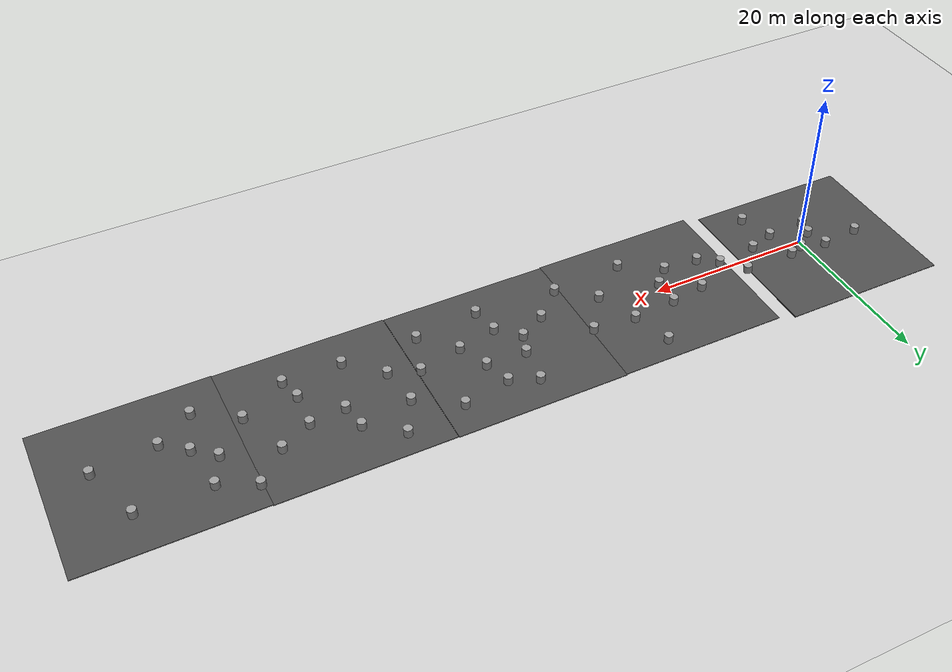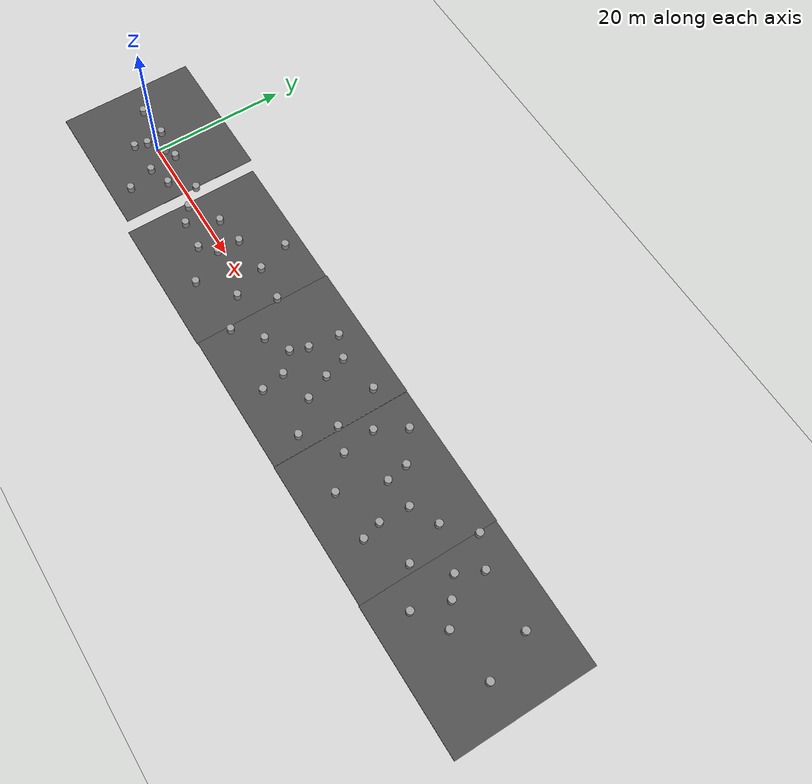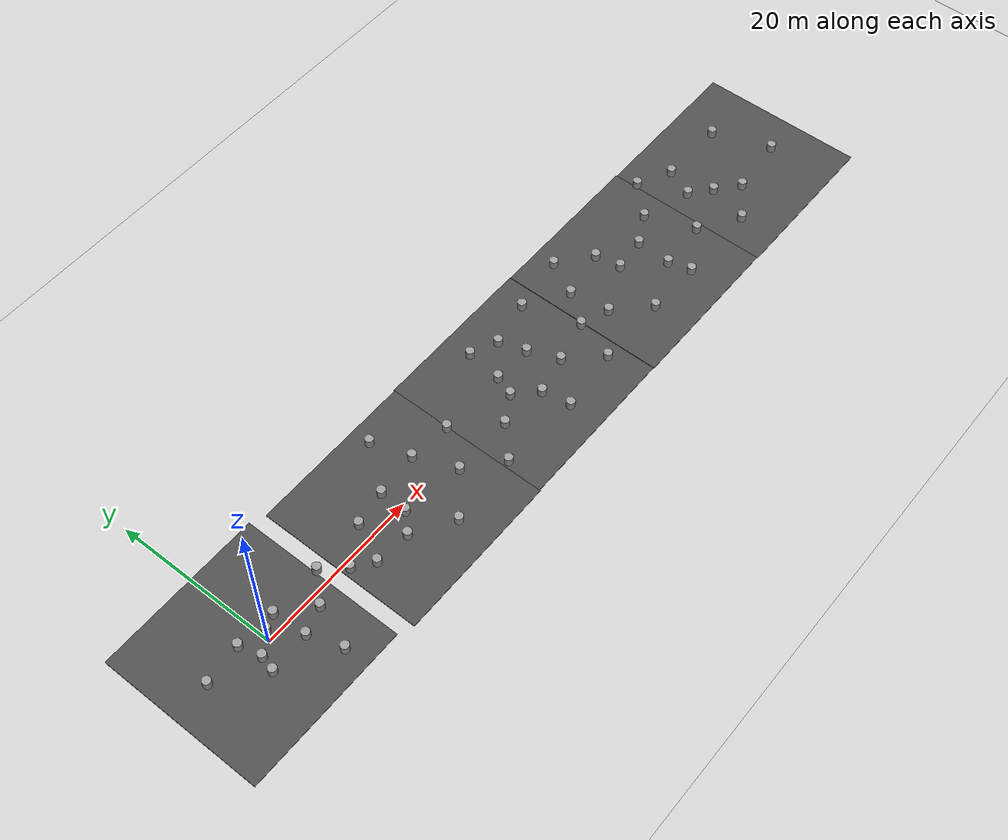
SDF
<sdf version="1.6">
 <world name="default">
  <light name="sun" type="directional">
   <pose>0 0 10 0 -0 0</pose>
   <diffuse>0.8 0.8 0.8 1</diffuse>
   <specular>0.2 0.2 0.2 1</specular>
   <attenuation>
    <range>1000</range>
    <constant>0.9</constant>
    <linear>0.01</linear>
    <quadratic>0.001</quadratic>
   </attenuation>
   <direction>-0.5 0.1 -0.9</direction>
  </light>
  <model name="ground_plane">
   <static>1</static>
   <link name="link">
    <collision name="collision">
     <geometry><plane><normal>0 0 1</normal><size>100 100</size></plane></geometry>
     <surface>
      <contact><collide_bitmask>65535</collide_bitmask></contact>
      <friction><ode><mu>100</mu><mu2>50</mu2></ode></friction>
     </surface>
    </collision>
    <visual name="visual">
     <cast_shadows>0</cast_shadows>
     <geometry><plane><normal>0 0 1</normal><size>100 100</size></plane></geometry>
     <material>
      <script><uri>file://media/materials/scripts/gazebo.material</uri><name>Gazebo/Grey</name></script>
     </material>
    </visual>
   </link>
  </model>
  <gravity>0 0 -9.8</gravity>
  <magnetic_field>6e-06 2.3e-05 -4.2e-05</magnetic_field>
  <atmosphere type="adiabatic"/>
  <physics name="default_physics" default="0" type="ode">
   <max_step_size>0.001</max_step_size>
   <real_time_factor>1</real_time_factor>
   <real_time_update_rate>1000</real_time_update_rate>
  </physics>
  <scene><ambient>0.4 0.4 0.4 1</ambient><background>0.7 0.7 0.7 1</background><shadows>1</shadows></scene>
  <audio><device>default</device></audio>
  <spherical_coordinates>
   <surface_model>EARTH_WGS84</surface_model>
   <latitude_deg>0</latitude_deg>
   <longitude_deg>0</longitude_deg>
   <elevation>0</elevation>
   <heading_deg>0</heading_deg>
  </spherical_coordinates>
  <model name="asphalt_plane">
   <static>1</static>
   <link name="link">
    <collision name="collision"><geometry><box><size>20 20 0.1</size></box></geometry></collision>
    <visual name="visual">
     <cast_shadows>0</cast_shadows>
     <geometry><box><size>20 20 0.1</size></box></geometry>
     <material>
      <script>
       <uri>model://asphalt_plane/materials/scripts</uri>
       <uri>model://asphalt_plane/materials/textures</uri>
       <name>vrc/asphalt</name>
      </script>
     </material>
    </visual>
   </link>
   <pose>-1.5508 0.779182 0 0 -0 0</pose>
  </model>
  <model name="unit_cylinder">
   <pose>-2.29859 1.87874 0.54999 0 -0 0.000129</pose>
   <link name="link">
    <inertial>
     <mass>1</mass>
     <inertia><ixx>0.145833</ixx><ixy>0</ixy><ixz>0</ixz><iyy>0.145833</iyy><iyz>0</iyz><izz>0.125</izz></inertia>
    </inertial>
    <collision name="collision">
     <geometry><cylinder><radius>0.5</radius><length>1</length></cylinder></geometry>
    </collision>
    <visual name="visual">
     <geometry><cylinder><radius>0.5</radius><length>1</length></cylinder></geometry>
     <material>
      <script><name>Gazebo/Grey</name><uri>file://media/materials/scripts/gazebo.material</uri></script>
     </material>
    </visual>
   </link>
  </model>
  <model name="unit_cylinder_0">
   <pose>-2.10484 -2.57833 0.550002 3e-06 1e-06 0.000136</pose>
   <link name="link">
    <inertial>
     <mass>1</mass>
     <inertia><ixx>0.145833</ixx><ixy>0</ixy><ixz>0</ixz><iyy>0.145833</iyy><iyz>0</iyz><izz>0.125</izz></inertia>
    </inertial>
    <collision name="collision">
     <geometry><cylinder><radius>0.5</radius><length>1</length></cylinder></geometry>
    </collision>
    <visual name="visual">
     <geometry><cylinder><radius>0.5</radius><length>1</length></cylinder></geometry>
     <material>
      <script><name>Gazebo/Grey</name><uri>file://media/materials/scripts/gazebo.material</uri></script>
     </material>
    </visual>
   </link>
  </model>
  <model name="unit_cylinder_1">
   <pose>2.42532 1.65976 0.55 0 -0 0.000209</pose>
   <link name="link">
    <inertial>
     <mass>1</mass>
     <inertia><ixx>0.145833</ixx><ixy>0</ixy><ixz>0</ixz><iyy>0.145833</iyy><iyz>0</iyz><izz>0.125</izz></inertia>
    </inertial>
    <collision name="collision">
     <geometry><cylinder><radius>0.5</radius><length>1</length></cylinder></geometry>
    </collision>
    <visual name="visual">
     <geometry><cylinder><radius>0.5</radius><length>1</length></cylinder></geometry>
     <material>
      <script><name>Gazebo/Grey</name><uri>file://media/materials/scripts/gazebo.material</uri></script>
     </material>
    </visual>
   </link>
  </model>
  <model name="unit_cylinder_2">
   <pose>2.75313 -2.41558 0.549992 -3e-06 -1e-06 8e-05</pose>
   <link name="link">
    <inertial>
     <mass>1</mass>
     <inertia><ixx>0.145833</ixx><ixy>0</ixy><ixz>0</ixz><iyy>0.145833</iyy><iyz>0</iyz><izz>0.125</izz></inertia>
    </inertial>
    <collision name="collision">
     <geometry><cylinder><radius>0.5</radius><length>1</length></cylinder></geometry>
    </collision>
    <visual name="visual">
     <geometry><cylinder><radius>0.5</radius><length>1</length></cylinder></geometry>
     <material>
      <script><name>Gazebo/Grey</name><uri>file://media/materials/scripts/gazebo.material</uri></script>
     </material>
    </visual>
   </link>
  </model>
  <model name="unit_cylinder_3">
   <pose>-1.6326 -0.739282 0.54999 0 -0 9.7e-05</pose>
   <link name="link">
    <inertial>
     <mass>1</mass>
     <inertia><ixx>0.145833</ixx><ixy>0</ixy><ixz>0</ixz><iyy>0.145833</iyy><iyz>0</iyz><izz>0.125</izz></inertia>
    </inertial>
    <collision name="collision">
     <geometry><cylinder><radius>0.5</radius><length>1</length></cylinder></geometry>
    </collision>
    <visual name="visual">
     <geometry><cylinder><radius>0.5</radius><length>1</length></cylinder></geometry>
     <material>
      <script><name>Gazebo/Grey</name><uri>file://media/materials/scripts/gazebo.material</uri></script>
     </material>
    </visual>
   </link>
  </model>
  <model name="unit_cylinder_4">
   <pose>4.05997 -6.35999 0.549997 2e-06 -5e-06 -7.7e-05</pose>
   <link name="link">
    <inertial>
     <mass>1</mass>
     <inertia><ixx>0.145833</ixx><ixy>0</ixy><ixz>0</ixz><iyy>0.145833</iyy><iyz>0</iyz><izz>0.125</izz></inertia>
    </inertial>
    <collision name="collision">
     <geometry><cylinder><radius>0.5</radius><length>1</length></cylinder></geometry>
    </collision>
    <visual name="visual">
     <geometry><cylinder><radius>0.5</radius><length>1</length></cylinder></geometry>
     <material>
      <script><name>Gazebo/Grey</name><uri>file://media/materials/scripts/gazebo.material</uri></script>
     </material>
    </visual>
   </link>
  </model>
  <model name="unit_cylinder_5">
   <pose>0.67298 0.98395 0.550002 3e-06 1e-06 0.000145</pose>
   <link name="link">
    <inertial>
     <mass>1</mass>
     <inertia><ixx>0.145833</ixx><ixy>0</ixy><ixz>0</ixz><iyy>0.145833</iyy><iyz>0</iyz><izz>0.125</izz></inertia>
    </inertial>
    <collision name="collision">
     <geometry><cylinder><radius>0.5</radius><length>1</length></cylinder></geometry>
    </collision>
    <visual name="visual">
     <geometry><cylinder><radius>0.5</radius><length>1</length></cylinder></geometry>
     <material>
      <script><name>Gazebo/Grey</name><uri>file://media/materials/scripts/gazebo.material</uri></script>
     </material>
    </visual>
   </link>
  </model>
  <model name="unit_cylinder_6">
   <pose>5.91371 -1.37835 0.549992 -3e-06 -1e-06 4.8e-05</pose>
   <link name="link">
    <inertial>
     <mass>1</mass>
     <inertia><ixx>0.145833</ixx><ixy>0</ixy><ixz>0</ixz><iyy>0.145833</iyy><iyz>0</iyz><izz>0.125</izz></inertia>
    </inertial>
    <collision name="collision">
     <geometry><cylinder><radius>0.5</radius><length>1</length></cylinder></geometry>
    </collision>
    <visual name="visual">
     <geometry><cylinder><radius>0.5</radius><length>1</length></cylinder></geometry>
     <material>
      <script><name>Gazebo/Grey</name><uri>file://media/materials/scripts/gazebo.material</uri></script>
     </material>
    </visual>
   </link>
  </model>
  <model name="unit_cylinder_7">
   <pose>8.69901 1.65113 0.533721 5e-06 0.069944 4.3e-05</pose>
   <link name="link">
    <inertial>
     <mass>1</mass>
     <inertia><ixx>0.145833</ixx><ixy>0</ixy><ixz>0</ixz><iyy>0.145833</iyy><iyz>0</iyz><izz>0.125</izz></inertia>
    </inertial>
    <collision name="collision">
     <geometry><cylinder><radius>0.5</radius><length>1</length></cylinder></geometry>
    </collision>
    <visual name="visual">
     <geometry><cylinder><radius>0.5</radius><length>1</length></cylinder></geometry>
     <material>
      <script><name>Gazebo/Grey</name><uri>file://media/materials/scripts/gazebo.material</uri></script>
     </material>
    </visual>
   </link>
  </model>
  <model name="unit_cylinder_8">
   <pose>-6.99339 1.38181 0.55 0 -0 -0.00033</pose>
   <link name="link">
    <inertial>
     <mass>1</mass>
     <inertia><ixx>0.145833</ixx><ixy>0</ixy><ixz>0</ixz><iyy>0.145833</iyy><iyz>0</iyz><izz>0.125</izz></inertia>
    </inertial>
    <collision name="collision">
     <geometry><cylinder><radius>0.5</radius><length>1</length></cylinder></geometry>
    </collision>
    <visual name="visual">
     <geometry><cylinder><radius>0.5</radius><length>1</length></cylinder></geometry>
     <material>
      <script><name>Gazebo/Grey</name><uri>file://media/materials/scripts/gazebo.material</uri></script>
     </material>
    </visual>
   </link>
  </model>
  <model name="unit_cylinder_9">
   <pose>10.9698 -0.817156 0.54999 -0 -0 -0.000304</pose>
   <link name="link">
    <inertial>
     <mass>1</mass>
     <inertia><ixx>0.145833</ixx><ixy>0</ixy><ixz>0</ixz><iyy>0.145833</iyy><iyz>0</iyz><izz>0.125</izz></inertia>
    </inertial>
    <collision name="collision">
     <geometry><cylinder><radius>0.5</radius><length>1</length></cylinder></geometry>
    </collision>
    <visual name="visual">
     <geometry><cylinder><radius>0.5</radius><length>1</length></cylinder></geometry>
     <material>
      <script><name>Gazebo/Grey</name><uri>file://media/materials/scripts/gazebo.material</uri></script>
     </material>
    </visual>
   </link>
  </model>
  <model name="asphalt_plane_0">
   <static>1</static>
   <link name="link">
    <collision name="collision"><geometry><box><size>20 20 0.1</size></box></geometry></collision>
    <visual name="visual">
     <cast_shadows>0</cast_shadows>
     <geometry><box><size>20 20 0.1</size></box></geometry>
     <material>
      <script>
       <uri>model://asphalt_plane/materials/scripts</uri>
       <uri>model://asphalt_plane/materials/textures</uri>
       <name>vrc/asphalt</name>
      </script>
     </material>
    </visual>
   </link>
   <pose>20.1677 0.054455 0 0 -0 0</pose>
  </model>
  <model name="unit_cylinder_10">
   <pose>15.2464 1.85955 0.550001 -2e-06 -0 6.6e-05</pose>
   <link name="link">
    <inertial>
     <mass>1</mass>
     <inertia><ixx>0.145833</ixx><ixy>0</ixy><ixz>0</ixz><iyy>0.145833</iyy><iyz>0</iyz><izz>0.125</izz></inertia>
    </inertial>
    <collision name="collision">
     <geometry><cylinder><radius>0.5</radius><length>1</length></cylinder></geometry>
    </collision>
    <visual name="visual">
     <geometry><cylinder><radius>0.5</radius><length>1</length></cylinder></geometry>
     <material>
      <script><name>Gazebo/Grey</name><uri>file://media/materials/scripts/gazebo.material</uri></script>
     </material>
    </visual>
   </link>
  </model>
  <model name="unit_cylinder_11">
   <pose>17.449 -2.78221 0.54999 0 -0 0.000204</pose>
   <link name="link">
    <inertial>
     <mass>1</mass>
     <inertia><ixx>0.145833</ixx><ixy>0</ixy><ixz>0</ixz><iyy>0.145833</iyy><iyz>0</iyz><izz>0.125</izz></inertia>
    </inertial>
    <collision name="collision">
     <geometry><cylinder><radius>0.5</radius><length>1</length></cylinder></geometry>
    </collision>
    <visual name="visual">
     <geometry><cylinder><radius>0.5</radius><length>1</length></cylinder></geometry>
     <material>
      <script><name>Gazebo/Grey</name><uri>file://media/materials/scripts/gazebo.material</uri></script>
     </material>
    </visual>
   </link>
  </model>
  <model name="unit_cylinder_12">
   <pose>19.4846 2.5326 0.55 0 -0 6.6e-05</pose>
   <link name="link">
    <inertial>
     <mass>1</mass>
     <inertia><ixx>0.145833</ixx><ixy>0</ixy><ixz>0</ixz><iyy>0.145833</iyy><iyz>0</iyz><izz>0.125</izz></inertia>
    </inertial>
    <collision name="collision">
     <geometry><cylinder><radius>0.5</radius><length>1</length></cylinder></geometry>
    </collision>
    <visual name="visual">
     <geometry><cylinder><radius>0.5</radius><length>1</length></cylinder></geometry>
     <material>
      <script><name>Gazebo/Grey</name><uri>file://media/materials/scripts/gazebo.material</uri></script>
     </material>
    </visual>
   </link>
  </model>
  <model name="unit_cylinder_13">
   <pose>19.4058 -0.787691 0.54999 -1e-06 0 0.000129</pose>
   <link name="link">
    <inertial>
     <mass>1</mass>
     <inertia><ixx>0.145833</ixx><ixy>0</ixy><ixz>0</ixz><iyy>0.145833</iyy><iyz>0</iyz><izz>0.125</izz></inertia>
    </inertial>
    <collision name="collision">
     <geometry><cylinder><radius>0.5</radius><length>1</length></cylinder></geometry>
    </collision>
    <visual name="visual">
     <geometry><cylinder><radius>0.5</radius><length>1</length></cylinder></geometry>
     <material>
      <script><name>Gazebo/Grey</name><uri>file://media/materials/scripts/gazebo.material</uri></script>
     </material>
    </visual>
   </link>
  </model>
  <model name="unit_cylinder_14">
   <pose>13.1818 -2.45774 0.549992 3e-06 -0 -0.000184</pose>
   <link name="link">
    <inertial>
     <mass>1</mass>
     <inertia><ixx>0.145833</ixx><ixy>0</ixy><ixz>0</ixz><iyy>0.145833</iyy><iyz>0</iyz><izz>0.125</izz></inertia>
    </inertial>
    <collision name="collision">
     <geometry><cylinder><radius>0.5</radius><length>1</length></cylinder></geometry>
    </collision>
    <visual name="visual">
     <geometry><cylinder><radius>0.5</radius><length>1</length></cylinder></geometry>
     <material>
      <script><name>Gazebo/Grey</name><uri>file://media/materials/scripts/gazebo.material</uri></script>
     </material>
    </visual>
   </link>
  </model>
  <model name="unit_cylinder_15">
   <pose>26.7754 -1.87461 0.550003 -5e-06 4e-06 -0.000118</pose>
   <link name="link">
    <inertial>
     <mass>1</mass>
     <inertia><ixx>0.145833</ixx><ixy>0</ixy><ixz>0</ixz><iyy>0.145833</iyy><iyz>0</iyz><izz>0.125</izz></inertia>
    </inertial>
    <collision name="collision">
     <geometry><cylinder><radius>0.5</radius><length>1</length></cylinder></geometry>
    </collision>
    <visual name="visual">
     <geometry><cylinder><radius>0.5</radius><length>1</length></cylinder></geometry>
     <material>
      <script><name>Gazebo/Grey</name><uri>file://media/materials/scripts/gazebo.material</uri></script>
     </material>
    </visual>
   </link>
  </model>
  <model name="unit_cylinder_16">
   <pose>24.8239 2.9826 0.550003 -6e-06 -1e-06 2e-06</pose>
   <link name="link">
    <inertial>
     <mass>1</mass>
     <inertia><ixx>0.145833</ixx><ixy>0</ixy><ixz>0</ixz><iyy>0.145833</iyy><iyz>0</iyz><izz>0.125</izz></inertia>
    </inertial>
    <collision name="collision">
     <geometry><cylinder><radius>0.5</radius><length>1</length></cylinder></geometry>
    </collision>
    <visual name="visual">
     <geometry><cylinder><radius>0.5</radius><length>1</length></cylinder></geometry>
     <material>
      <script><name>Gazebo/Grey</name><uri>file://media/materials/scripts/gazebo.material</uri></script>
     </material>
    </visual>
   </link>
  </model>
  <model name="asphalt_plane_1">
   <static>1</static>
   <link name="link">
    <collision name="collision"><geometry><box><size>20 20 0.1</size></box></geometry></collision>
    <visual name="visual">
     <cast_shadows>0</cast_shadows>
     <geometry><box><size>20 20 0.1</size></box></geometry>
     <material>
      <script>
       <uri>model://asphalt_plane/materials/scripts</uri>
       <uri>model://asphalt_plane/materials/textures</uri>
       <name>vrc/asphalt</name>
      </script>
     </material>
    </visual>
   </link>
   <pose>40.1163 0.164408 0 0 -0 0</pose>
  </model>
  <model name="unit_cylinder_17">
   <pose>29.9318 2.51271 0.55 0 -0 9.9e-05</pose>
   <link name="link">
    <inertial>
     <mass>1</mass>
     <inertia><ixx>0.145833</ixx><ixy>0</ixy><ixz>0</ixz><iyy>0.145833</iyy><iyz>0</iyz><izz>0.125</izz></inertia>
    </inertial>
    <collision name="collision">
     <geometry><cylinder><radius>0.5</radius><length>1</length></cylinder></geometry>
    </collision>
    <visual name="visual">
     <geometry><cylinder><radius>0.5</radius><length>1</length></cylinder></geometry>
     <material>
      <script><name>Gazebo/Grey</name><uri>file://media/materials/scripts/gazebo.material</uri></script>
     </material>
    </visual>
   </link>
  </model>
  <model name="unit_cylinder_18">
   <pose>34.2133 -1.94796 0.550003 2e-06 -5e-06 -0.000178</pose>
   <link name="link">
    <inertial>
     <mass>1</mass>
     <inertia><ixx>0.145833</ixx><ixy>0</ixy><ixz>0</ixz><iyy>0.145833</iyy><iyz>0</iyz><izz>0.125</izz></inertia>
    </inertial>
    <collision name="collision">
     <geometry><cylinder><radius>0.5</radius><length>1</length></cylinder></geometry>
    </collision>
    <visual name="visual">
     <geometry><cylinder><radius>0.5</radius><length>1</length></cylinder></geometry>
     <material>
      <script><name>Gazebo/Grey</name><uri>file://media/materials/scripts/gazebo.material</uri></script>
     </material>
    </visual>
   </link>
  </model>
  <model name="unit_cylinder_19">
   <pose>38.88 6.72302 0.55 0 -0 4.4e-05</pose>
   <link name="link">
    <inertial>
     <mass>1</mass>
     <inertia><ixx>0.145833</ixx><ixy>0</ixy><ixz>0</ixz><iyy>0.145833</iyy><iyz>0</iyz><izz>0.125</izz></inertia>
    </inertial>
    <collision name="collision">
     <geometry><cylinder><radius>0.5</radius><length>1</length></cylinder></geometry>
    </collision>
    <visual name="visual">
     <geometry><cylinder><radius>0.5</radius><length>1</length></cylinder></geometry>
     <material>
      <script><name>Gazebo/Grey</name><uri>file://media/materials/scripts/gazebo.material</uri></script>
     </material>
    </visual>
   </link>
  </model>
  <model name="unit_cylinder_20">
   <pose>40.5016 -5.86164 0.550003 -2e-06 5e-06 4.1e-05</pose>
   <link name="link">
    <inertial>
     <mass>1</mass>
     <inertia><ixx>0.145833</ixx><ixy>0</ixy><ixz>0</ixz><iyy>0.145833</iyy><iyz>0</iyz><izz>0.125</izz></inertia>
    </inertial>
    <collision name="collision">
     <geometry><cylinder><radius>0.5</radius><length>1</length></cylinder></geometry>
    </collision>
    <visual name="visual">
     <geometry><cylinder><radius>0.5</radius><length>1</length></cylinder></geometry>
     <material>
      <script><name>Gazebo/Grey</name><uri>file://media/materials/scripts/gazebo.material</uri></script>
     </material>
    </visual>
   </link>
  </model>
  <model name="unit_cylinder_21">
   <pose>38.3535 2.3735 0.549997 2e-06 6e-06 -9e-06</pose>
   <link name="link">
    <inertial>
     <mass>1</mass>
     <inertia><ixx>0.145833</ixx><ixy>0</ixy><ixz>0</ixz><iyy>0.145833</iyy><iyz>0</iyz><izz>0.125</izz></inertia>
    </inertial>
    <collision name="collision">
     <geometry><cylinder><radius>0.5</radius><length>1</length></cylinder></geometry>
    </collision>
    <visual name="visual">
     <geometry><cylinder><radius>0.5</radius><length>1</length></cylinder></geometry>
     <material>
      <script><name>Gazebo/Grey</name><uri>file://media/materials/scripts/gazebo.material</uri></script>
     </material>
    </visual>
   </link>
  </model>
  <model name="unit_cylinder_22">
   <pose>44.5677 -1.40732 0.550001 -2e-06 -0 3.8e-05</pose>
   <link name="link">
    <inertial>
     <mass>1</mass>
     <inertia><ixx>0.145833</ixx><ixy>0</ixy><ixz>0</ixz><iyy>0.145833</iyy><iyz>0</iyz><izz>0.125</izz></inertia>
    </inertial>
    <collision name="collision">
     <geometry><cylinder><radius>0.5</radius><length>1</length></cylinder></geometry>
    </collision>
    <visual name="visual">
     <geometry><cylinder><radius>0.5</radius><length>1</length></cylinder></geometry>
     <material>
      <script><name>Gazebo/Grey</name><uri>file://media/materials/scripts/gazebo.material</uri></script>
     </material>
    </visual>
   </link>
  </model>
  <model name="unit_cylinder_23">
   <pose>30.7927 -5.17608 0.55 -0 -0 -0.00023</pose>
   <link name="link">
    <inertial>
     <mass>1</mass>
     <inertia><ixx>0.145833</ixx><ixy>0</ixy><ixz>0</ixz><iyy>0.145833</iyy><iyz>0</iyz><izz>0.125</izz></inertia>
    </inertial>
    <collision name="collision">
     <geometry><cylinder><radius>0.5</radius><length>1</length></cylinder></geometry>
    </collision>
    <visual name="visual">
     <geometry><cylinder><radius>0.5</radius><length>1</length></cylinder></geometry>
     <material>
      <script><name>Gazebo/Grey</name><uri>file://media/materials/scripts/gazebo.material</uri></script>
     </material>
    </visual>
   </link>
  </model>
  <model name="unit_cylinder_24">
   <pose>42.089 5.38193 0.549991 1e-06 -0 0.000134</pose>
   <link name="link">
    <inertial>
     <mass>1</mass>
     <inertia><ixx>0.145833</ixx><ixy>0</ixy><ixz>0</ixz><iyy>0.145833</iyy><iyz>0</iyz><izz>0.125</izz></inertia>
    </inertial>
    <collision name="collision">
     <geometry><cylinder><radius>0.5</radius><length>1</length></cylinder></geometry>
    </collision>
    <visual name="visual">
     <geometry><cylinder><radius>0.5</radius><length>1</length></cylinder></geometry>
     <material>
      <script><name>Gazebo/Grey</name><uri>file://media/materials/scripts/gazebo.material</uri></script>
     </material>
    </visual>
   </link>
  </model>
  <model name="unit_cylinder_25">
   <pose>47.6601 6.49502 0.54999 0 -0 2.2e-05</pose>
   <link name="link">
    <inertial>
     <mass>1</mass>
     <inertia><ixx>0.145833</ixx><ixy>0</ixy><ixz>0</ixz><iyy>0.145833</iyy><iyz>0</iyz><izz>0.125</izz></inertia>
    </inertial>
    <collision name="collision">
     <geometry><cylinder><radius>0.5</radius><length>1</length></cylinder></geometry>
    </collision>
    <visual name="visual">
     <geometry><cylinder><radius>0.5</radius><length>1</length></cylinder></geometry>
     <material>
      <script><name>Gazebo/Grey</name><uri>file://media/materials/scripts/gazebo.material</uri></script>
     </material>
    </visual>
   </link>
  </model>
  <model name="unit_cylinder_26">
   <pose>37.4483 -0.049634 0.550006 -4e-06 -1.2e-05 -0</pose>
   <link name="link">
    <inertial>
     <mass>1</mass>
     <inertia><ixx>0.145833</ixx><ixy>0</ixy><ixz>0</ixz><iyy>0.145833</iyy><iyz>0</iyz><izz>0.125</izz></inertia>
    </inertial>
    <collision name="collision">
     <geometry><cylinder><radius>0.5</radius><length>1</length></cylinder></geometry>
    </collision>
    <visual name="visual">
     <geometry><cylinder><radius>0.5</radius><length>1</length></cylinder></geometry>
     <material>
      <script><name>Gazebo/Grey</name><uri>file://media/materials/scripts/gazebo.material</uri></script>
     </material>
    </visual>
   </link>
  </model>
  <model name="unit_cylinder_27">
   <pose>22.0879 -5.69033 0.549997 -6e-06 -2e-06 -0.000104</pose>
   <link name="link">
    <inertial>
     <mass>1</mass>
     <inertia><ixx>0.145833</ixx><ixy>0</ixy><ixz>0</ixz><iyy>0.145833</iyy><iyz>0</iyz><izz>0.125</izz></inertia>
    </inertial>
    <collision name="collision">
     <geometry><cylinder><radius>0.5</radius><length>1</length></cylinder></geometry>
    </collision>
    <visual name="visual">
     <geometry><cylinder><radius>0.5</radius><length>1</length></cylinder></geometry>
     <material>
      <script><name>Gazebo/Grey</name><uri>file://media/materials/scripts/gazebo.material</uri></script>
     </material>
    </visual>
   </link>
  </model>
  <model name="unit_cylinder_28">
   <pose>23.3751 7.64498 0.549991 1e-06 0 -0.000154</pose>
   <link name="link">
    <inertial>
     <mass>1</mass>
     <inertia><ixx>0.145833</ixx><ixy>0</ixy><ixz>0</ixz><iyy>0.145833</iyy><iyz>0</iyz><izz>0.125</izz></inertia>
    </inertial>
    <collision name="collision">
     <geometry><cylinder><radius>0.5</radius><length>1</length></cylinder></geometry>
    </collision>
    <visual name="visual">
     <geometry><cylinder><radius>0.5</radius><length>1</length></cylinder></geometry>
     <material>
      <script><name>Gazebo/Grey</name><uri>file://media/materials/scripts/gazebo.material</uri></script>
     </material>
    </visual>
   </link>
  </model>
  <model name="asphalt_plane_2">
   <static>1</static>
   <link name="link">
    <collision name="collision"><geometry><box><size>20 20 0.1</size></box></geometry></collision>
    <visual name="visual">
     <cast_shadows>0</cast_shadows>
     <geometry><box><size>20 20 0.1</size></box></geometry>
     <material>
      <script>
       <uri>model://asphalt_plane/materials/scripts</uri>
       <uri>model://asphalt_plane/materials/textures</uri>
       <name>vrc/asphalt</name>
      </script>
     </material>
    </visual>
   </link>
   <pose>60.1662 0.094258 0 0 -0 0</pose>
  </model>
  <model name="unit_cylinder_29">
   <pose>49.7665 -0.205436 0.550001 -2e-06 -1e-06 6.2e-05</pose>
   <link name="link">
    <inertial>
     <mass>1</mass>
     <inertia><ixx>0.145833</ixx><ixy>0</ixy><ixz>0</ixz><iyy>0.145833</iyy><iyz>0</iyz><izz>0.125</izz></inertia>
    </inertial>
    <collision name="collision">
     <geometry><cylinder><radius>0.5</radius><length>1</length></cylinder></geometry>
    </collision>
    <visual name="visual">
     <geometry><cylinder><radius>0.5</radius><length>1</length></cylinder></geometry>
     <material>
      <script><name>Gazebo/Grey</name><uri>file://media/materials/scripts/gazebo.material</uri></script>
     </material>
    </visual>
   </link>
  </model>
  <model name="unit_cylinder_30">
   <pose>53.1816 -1.42312 0.549992 2e-06 3e-06 -0.000142</pose>
   <link name="link">
    <inertial>
     <mass>1</mass>
     <inertia><ixx>0.145833</ixx><ixy>0</ixy><ixz>0</ixz><iyy>0.145833</iyy><iyz>0</iyz><izz>0.125</izz></inertia>
    </inertial>
    <collision name="collision">
     <geometry><cylinder><radius>0.5</radius><length>1</length></cylinder></geometry>
    </collision>
    <visual name="visual">
     <geometry><cylinder><radius>0.5</radius><length>1</length></cylinder></geometry>
     <material>
      <script><name>Gazebo/Grey</name><uri>file://media/materials/scripts/gazebo.material</uri></script>
     </material>
    </visual>
   </link>
  </model>
  <model name="unit_cylinder_31">
   <pose>58.5295 4.4116 0.55 -0 -0 -0.000153</pose>
   <link name="link">
    <inertial>
     <mass>1</mass>
     <inertia><ixx>0.145833</ixx><ixy>0</ixy><ixz>0</ixz><iyy>0.145833</iyy><iyz>0</iyz><izz>0.125</izz></inertia>
    </inertial>
    <collision name="collision">
     <geometry><cylinder><radius>0.5</radius><length>1</length></cylinder></geometry>
    </collision>
    <visual name="visual">
     <geometry><cylinder><radius>0.5</radius><length>1</length></cylinder></geometry>
     <material>
      <script><name>Gazebo/Grey</name><uri>file://media/materials/scripts/gazebo.material</uri></script>
     </material>
    </visual>
   </link>
  </model>
  <model name="unit_cylinder_32">
   <pose>63.0011 -2.50566 0.549998 -4e-06 -2e-06 -0</pose>
   <link name="link">
    <inertial>
     <mass>1</mass>
     <inertia><ixx>0.145833</ixx><ixy>0</ixy><ixz>0</ixz><iyy>0.145833</iyy><iyz>0</iyz><izz>0.125</izz></inertia>
    </inertial>
    <collision name="collision">
     <geometry><cylinder><radius>0.5</radius><length>1</length></cylinder></geometry>
    </collision>
    <visual name="visual">
     <geometry><cylinder><radius>0.5</radius><length>1</length></cylinder></geometry>
     <material>
      <script><name>Gazebo/Grey</name><uri>file://media/materials/scripts/gazebo.material</uri></script>
     </material>
    </visual>
   </link>
  </model>
  <model name="unit_cylinder_33">
   <pose>57.0015 -5.10267 0.549992 2e-06 1e-06 6.7e-05</pose>
   <link name="link">
    <inertial>
     <mass>1</mass>
     <inertia><ixx>0.145833</ixx><ixy>0</ixy><ixz>0</ixz><iyy>0.145833</iyy><iyz>0</iyz><izz>0.125</izz></inertia>
    </inertial>
    <collision name="collision">
     <geometry><cylinder><radius>0.5</radius><length>1</length></cylinder></geometry>
    </collision>
    <visual name="visual">
     <geometry><cylinder><radius>0.5</radius><length>1</length></cylinder></geometry>
     <material>
      <script><name>Gazebo/Grey</name><uri>file://media/materials/scripts/gazebo.material</uri></script>
     </material>
    </visual>
   </link>
  </model>
  <model name="unit_cylinder_34">
   <pose>39.9012 -2.4678 0.55 0 -0 -1.6e-05</pose>
   <link name="link">
    <inertial>
     <mass>1</mass>
     <inertia><ixx>0.145833</ixx><ixy>0</ixy><ixz>0</ixz><iyy>0.145833</iyy><iyz>0</iyz><izz>0.125</izz></inertia>
    </inertial>
    <collision name="collision">
     <geometry><cylinder><radius>0.5</radius><length>1</length></cylinder></geometry>
    </collision>
    <visual name="visual">
     <geometry><cylinder><radius>0.5</radius><length>1</length></cylinder></geometry>
     <material>
      <script><name>Gazebo/Grey</name><uri>file://media/materials/scripts/gazebo.material</uri></script>
     </material>
    </visual>
   </link>
  </model>
  <model name="unit_cylinder_35">
   <pose>52.5088 3.35612 0.550001 2e-06 -0 9.2e-05</pose>
   <link name="link">
    <inertial>
     <mass>1</mass>
     <inertia><ixx>0.145833</ixx><ixy>0</ixy><ixz>0</ixz><iyy>0.145833</iyy><iyz>0</iyz><izz>0.125</izz></inertia>
    </inertial>
    <collision name="collision">
     <geometry><cylinder><radius>0.5</radius><length>1</length></cylinder></geometry>
    </collision>
    <visual name="visual">
     <geometry><cylinder><radius>0.5</radius><length>1</length></cylinder></geometry>
     <material>
      <script><name>Gazebo/Grey</name><uri>file://media/materials/scripts/gazebo.material</uri></script>
     </material>
    </visual>
   </link>
  </model>
  <model name="unit_cylinder_36">
   <pose>48.1541 -5.11418 0.549991 1e-06 -0 -6.1e-05</pose>
   <link name="link">
    <inertial>
     <mass>1</mass>
     <inertia><ixx>0.145833</ixx><ixy>0</ixy><ixz>0</ixz><iyy>0.145833</iyy><iyz>0</iyz><izz>0.125</izz></inertia>
    </inertial>
    <collision name="collision">
     <geometry><cylinder><radius>0.5</radius><length>1</length></cylinder></geometry>
    </collision>
    <visual name="visual">
     <geometry><cylinder><radius>0.5</radius><length>1</length></cylinder></geometry>
     <material>
      <script><name>Gazebo/Grey</name><uri>file://media/materials/scripts/gazebo.material</uri></script>
     </material>
    </visual>
   </link>
  </model>
  <model name="unit_cylinder_37">
   <pose>66.8905 3.67114 0.55 0 -0 1.6e-05</pose>
   <link name="link">
    <inertial>
     <mass>1</mass>
     <inertia><ixx>0.145833</ixx><ixy>0</ixy><ixz>0</ixz><iyy>0.145833</iyy><iyz>0</iyz><izz>0.125</izz></inertia>
    </inertial>
    <collision name="collision">
     <geometry><cylinder><radius>0.5</radius><length>1</length></cylinder></geometry>
    </collision>
    <visual name="visual">
     <geometry><cylinder><radius>0.5</radius><length>1</length></cylinder></geometry>
     <material>
      <script><name>Gazebo/Grey</name><uri>file://media/materials/scripts/gazebo.material</uri></script>
     </material>
    </visual>
   </link>
  </model>
  <model name="asphalt_plane_3">
   <static>1</static>
   <link name="link">
    <collision name="collision"><geometry><box><size>20 20 0.1</size></box></geometry></collision>
    <visual name="visual">
     <cast_shadows>0</cast_shadows>
     <geometry><box><size>20 20 0.1</size></box></geometry>
     <material>
      <script>
       <uri>model://asphalt_plane/materials/scripts</uri>
       <uri>model://asphalt_plane/materials/textures</uri>
       <name>vrc/asphalt</name>
      </script>
     </material>
    </visual>
   </link>
   <pose>80.1174 -0.001873 0 0 -0 0</pose>
  </model>
  <model name="unit_cylinder_38">
   <pose>69.1297 -2.15406 0.550002 4e-06 1e-06 -0.00011</pose>
   <link name="link">
    <inertial>
     <mass>1</mass>
     <inertia><ixx>0.145833</ixx><ixy>0</ixy><ixz>0</ixz><iyy>0.145833</iyy><iyz>0</iyz><izz>0.125</izz></inertia>
    </inertial>
    <collision name="collision">
     <geometry><cylinder><radius>0.5</radius><length>1</length></cylinder></geometry>
    </collision>
    <visual name="visual">
     <geometry><cylinder><radius>0.5</radius><length>1</length></cylinder></geometry>
     <material>
      <script><name>Gazebo/Grey</name><uri>file://media/materials/scripts/gazebo.material</uri></script>
     </material>
    </visual>
   </link>
  </model>
  <model name="unit_cylinder_39">
   <pose>74.4476 5.23311 0.55 6e-06 2e-06 -8e-06</pose>
   <link name="link">
    <inertial>
     <mass>1</mass>
     <inertia><ixx>0.145833</ixx><ixy>0</ixy><ixz>0</ixz><iyy>0.145833</iyy><iyz>0</iyz><izz>0.125</izz></inertia>
    </inertial>
    <collision name="collision">
     <geometry><cylinder><radius>0.5</radius><length>1</length></cylinder></geometry>
    </collision>
    <visual name="visual">
     <geometry><cylinder><radius>0.5</radius><length>1</length></cylinder></geometry>
     <material>
      <script><name>Gazebo/Grey</name><uri>file://media/materials/scripts/gazebo.material</uri></script>
     </material>
    </visual>
   </link>
  </model>
  <model name="unit_cylinder_40">
   <pose>77.9966 -2.44713 0.549992 4e-06 1e-06 -1.8e-05</pose>
   <link name="link">
    <inertial>
     <mass>1</mass>
     <inertia><ixx>0.145833</ixx><ixy>0</ixy><ixz>0</ixz><iyy>0.145833</iyy><iyz>0</iyz><izz>0.125</izz></inertia>
    </inertial>
    <collision name="collision">
     <geometry><cylinder><radius>0.5</radius><length>1</length></cylinder></geometry>
    </collision>
    <visual name="visual">
     <geometry><cylinder><radius>0.5</radius><length>1</length></cylinder></geometry>
     <material>
      <script><name>Gazebo/Grey</name><uri>file://media/materials/scripts/gazebo.material</uri></script>
     </material>
    </visual>
   </link>
  </model>
  <model name="unit_cylinder_41">
   <pose>72.8801 1.76244 0.550001 1e-06 1e-06 -0.000105</pose>
   <link name="link">
    <inertial>
     <mass>1</mass>
     <inertia><ixx>0.145833</ixx><ixy>0</ixy><ixz>0</ixz><iyy>0.145833</iyy><iyz>0</iyz><izz>0.125</izz></inertia>
    </inertial>
    <collision name="collision">
     <geometry><cylinder><radius>0.5</radius><length>1</length></cylinder></geometry>
    </collision>
    <visual name="visual">
     <geometry><cylinder><radius>0.5</radius><length>1</length></cylinder></geometry>
     <material>
      <script><name>Gazebo/Grey</name><uri>file://media/materials/scripts/gazebo.material</uri></script>
     </material>
    </visual>
   </link>
  </model>
  <model name="unit_cylinder_42">
   <pose>73.8212 -5.22093 0.549992 1e-06 3e-06 -0.000173</pose>
   <link name="link">
    <inertial>
     <mass>1</mass>
     <inertia><ixx>0.145833</ixx><ixy>0</ixy><ixz>0</ixz><iyy>0.145833</iyy><iyz>0</iyz><izz>0.125</izz></inertia>
    </inertial>
    <collision name="collision">
     <geometry><cylinder><radius>0.5</radius><length>1</length></cylinder></geometry>
    </collision>
    <visual name="visual">
     <geometry><cylinder><radius>0.5</radius><length>1</length></cylinder></geometry>
     <material>
      <script><name>Gazebo/Grey</name><uri>file://media/materials/scripts/gazebo.material</uri></script>
     </material>
    </visual>
   </link>
  </model>
  <model name="unit_cylinder_43">
   <pose>59.0613 1.32231 0.549989 -2e-06 0 4.7e-05</pose>
   <link name="link">
    <inertial>
     <mass>1</mass>
     <inertia><ixx>0.145833</ixx><ixy>0</ixy><ixz>0</ixz><iyy>0.145833</iyy><iyz>0</iyz><izz>0.125</izz></inertia>
    </inertial>
    <collision name="collision">
     <geometry><cylinder><radius>0.5</radius><length>1</length></cylinder></geometry>
    </collision>
    <visual name="visual">
     <geometry><cylinder><radius>0.5</radius><length>1</length></cylinder></geometry>
     <material>
      <script><name>Gazebo/Grey</name><uri>file://media/materials/scripts/gazebo.material</uri></script>
     </material>
    </visual>
   </link>
  </model>
  <model name="unit_cylinder_44">
   <pose>63.2124 1.74454 0.55 -1e-06 0 4.3e-05</pose>
   <link name="link">
    <inertial>
     <mass>1</mass>
     <inertia><ixx>0.145833</ixx><ixy>0</ixy><ixz>0</ixz><iyy>0.145833</iyy><iyz>0</iyz><izz>0.125</izz></inertia>
    </inertial>
    <collision name="collision">
     <geometry><cylinder><radius>0.5</radius><length>1</length></cylinder></geometry>
    </collision>
    <visual name="visual">
     <geometry><cylinder><radius>0.5</radius><length>1</length></cylinder></geometry>
     <material>
      <script><name>Gazebo/Grey</name><uri>file://media/materials/scripts/gazebo.material</uri></script>
     </material>
    </visual>
   </link>
  </model>
  <model name="unit_cylinder_45">
   <pose>63.7291 -5.23364 0.55 0 -0 3.6e-05</pose>
   <link name="link">
    <inertial>
     <mass>1</mass>
     <inertia><ixx>0.145833</ixx><ixy>0</ixy><ixz>0</ixz><iyy>0.145833</iyy><iyz>0</iyz><izz>0.125</izz></inertia>
    </inertial>
    <collision name="collision">
     <geometry><cylinder><radius>0.5</radius><length>1</length></cylinder></geometry>
    </collision>
    <visual name="visual">
     <geometry><cylinder><radius>0.5</radius><length>1</length></cylinder></geometry>
     <material>
      <script><name>Gazebo/Grey</name><uri>file://media/materials/scripts/gazebo.material</uri></script>
     </material>
    </visual>
   </link>
  </model>
  <model name="unit_cylinder_46">
   <pose>70.3576 7.23157 0.54999 0 -0 2e-06</pose>
   <link name="link">
    <inertial>
     <mass>1</mass>
     <inertia><ixx>0.145833</ixx><ixy>0</ixy><ixz>0</ixz><iyy>0.145833</iyy><iyz>0</iyz><izz>0.125</izz></inertia>
    </inertial>
    <collision name="collision">
     <geometry><cylinder><radius>0.5</radius><length>1</length></cylinder></geometry>
    </collision>
    <visual name="visual">
     <geometry><cylinder><radius>0.5</radius><length>1</length></cylinder></geometry>
     <material>
      <script><name>Gazebo/Grey</name><uri>file://media/materials/scripts/gazebo.material</uri></script>
     </material>
    </visual>
   </link>
  </model>
  <model name="unit_cylinder_47">
   <pose>75.2769 -0.252917 0.54999 -0 -0 -7e-06</pose>
   <link name="link">
    <inertial>
     <mass>1</mass>
     <inertia><ixx>0.145833</ixx><ixy>0</ixy><ixz>0</ixz><iyy>0.145833</iyy><iyz>0</iyz><izz>0.125</izz></inertia>
    </inertial>
    <collision name="collision">
     <geometry><cylinder><radius>0.5</radius><length>1</length></cylinder></geometry>
    </collision>
    <visual name="visual">
     <geometry><cylinder><radius>0.5</radius><length>1</length></cylinder></geometry>
     <material>
      <script><name>Gazebo/Grey</name><uri>file://media/materials/scripts/gazebo.material</uri></script>
     </material>
    </visual>
   </link>
  </model>
  <model name="unit_cylinder_48">
   <pose>54.6487 7.45628 0.54999 -0 -0 -0.000137</pose>
   <link name="link">
    <inertial>
     <mass>1</mass>
     <inertia><ixx>0.145833</ixx><ixy>0</ixy><ixz>0</ixz><iyy>0.145833</iyy><iyz>0</iyz><izz>0.125</izz></inertia>
    </inertial>
    <collision name="collision">
     <geometry><cylinder><radius>0.5</radius><length>1</length></cylinder></geometry>
    </collision>
    <visual name="visual">
     <geometry><cylinder><radius>0.5</radius><length>1</length></cylinder></geometry>
     <material>
      <script><name>Gazebo/Grey</name><uri>file://media/materials/scripts/gazebo.material</uri></script>
     </material>
    </visual>
   </link>
  </model>
  <model name="unit_cylinder_49">
   <pose>43.0826 2.18651 0.54999 0 -0 2.7e-05</pose>
   <link name="link">
    <inertial>
     <mass>1</mass>
     <inertia><ixx>0.145833</ixx><ixy>0</ixy><ixz>0</ixz><iyy>0.145833</iyy><iyz>0</iyz><izz>0.125</izz></inertia>
    </inertial>
    <collision name="collision">
     <geometry><cylinder><radius>0.5</radius><length>1</length></cylinder></geometry>
    </collision>
    <visual name="visual">
     <geometry><cylinder><radius>0.5</radius><length>1</length></cylinder></geometry>
     <material>
      <script><name>Gazebo/Grey</name><uri>file://media/materials/scripts/gazebo.material</uri></script>
     </material>
    </visual>
   </link>
  </model>
  <model name="unit_cylinder_50">
   <pose>82.6952 5.12026 0.549991 -0 1e-06 6.8e-05</pose>
   <link name="link">
    <inertial>
     <mass>1</mass>
     <inertia><ixx>0.145833</ixx><ixy>0</ixy><ixz>0</ixz><iyy>0.145833</iyy><iyz>0</iyz><izz>0.125</izz></inertia>
    </inertial>
    <collision name="collision">
     <geometry><cylinder><radius>0.5</radius><length>1</length></cylinder></geometry>
    </collision>
    <visual name="visual">
     <geometry><cylinder><radius>0.5</radius><length>1</length></cylinder></geometry>
     <material>
      <script><name>Gazebo/Grey</name><uri>file://media/materials/scripts/gazebo.material</uri></script>
     </material>
    </visual>
   </link>
  </model>
  <model name="unit_cylinder_51">
   <pose>85.1758 -1.76004 0.550001 2e-06 -0 1.8e-05</pose>
   <link name="link">
    <inertial>
     <mass>1</mass>
     <inertia><ixx>0.145833</ixx><ixy>0</ixy><ixz>0</ixz><iyy>0.145833</iyy><iyz>0</iyz><izz>0.125</izz></inertia>
    </inertial>
    <collision name="collision">
     <geometry><cylinder><radius>0.5</radius><length>1</length></cylinder></geometry>
    </collision>
    <visual name="visual">
     <geometry><cylinder><radius>0.5</radius><length>1</length></cylinder></geometry>
     <material>
      <script><name>Gazebo/Grey</name><uri>file://media/materials/scripts/gazebo.material</uri></script>
     </material>
    </visual>
   </link>
  </model>
 </world>
</sdf>
